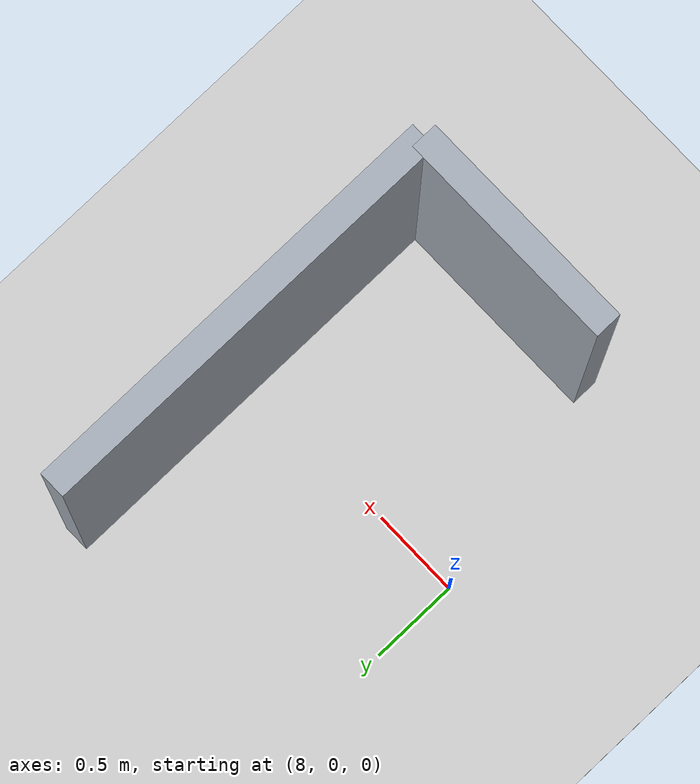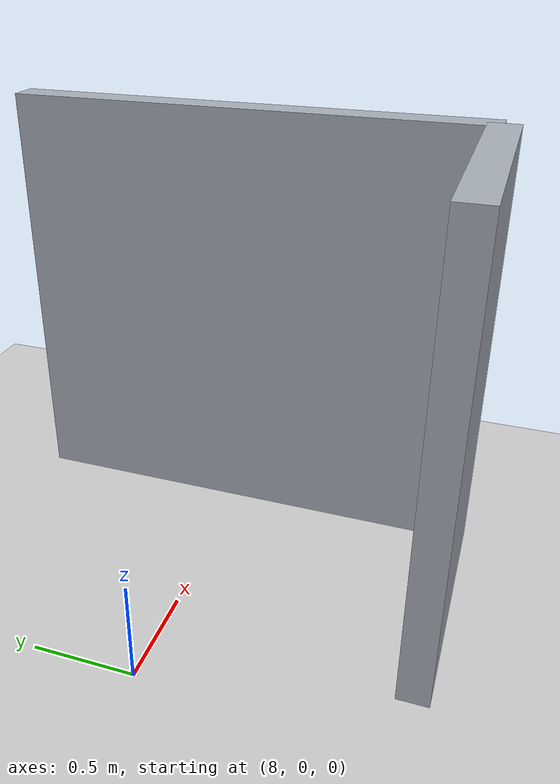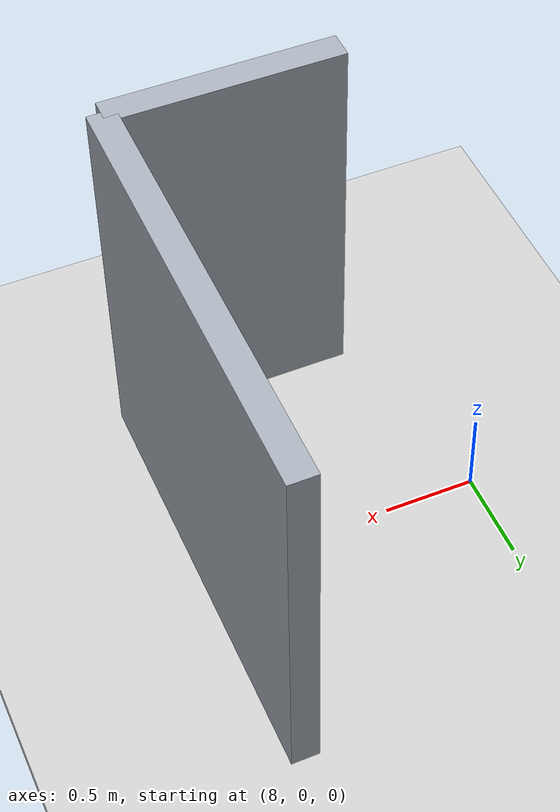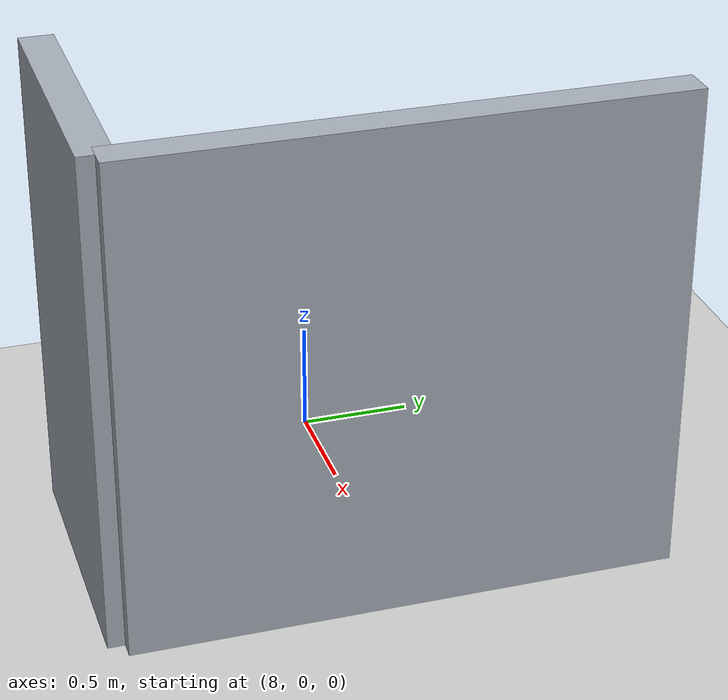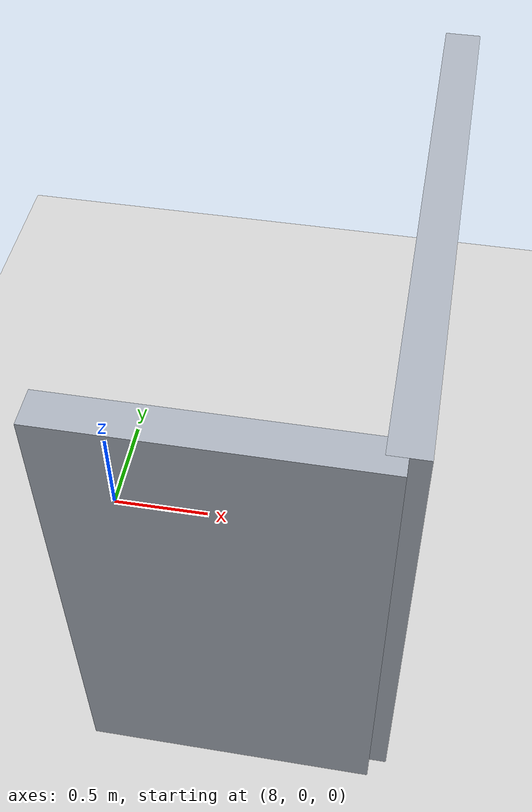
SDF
<sdf version="1.9">
 <world name="default">
  <model name="ground_plane">
   <static>true</static>
   <pose>4.75 0 -0.05 0 0 0</pose>
   <link name="body">
    <collision name="collision"><geometry><box><size>13.5 12 0.1</size></box></geometry></collision>
    <visual name="visual">
     <geometry><box><size>13.5 12 0.1</size></box></geometry>
     <material><ambient>0.8 0.8 0.8 1</ambient><diffuse>0.8 0.8 0.8 1</diffuse></material>
    </visual>
   </link>
  </model>
  <model name="end_wall">
   <static>true</static>
   <pose>9.5 0 1.1 0 0 0</pose>
   <link name="body">
    <collision name="collision"><geometry><box><size>0.15 2.4 2.2</size></box></geometry></collision>
    <visual name="visual">
     <geometry><box><size>0.15 2.4 2.2</size></box></geometry>
     <material><ambient>0.65 0.68 0.72 1</ambient><diffuse>0.65 0.68 0.72 1</diffuse></material>
    </visual>
   </link>
  </model>
  <model name="hall_end_-1">
   <static>true</static>
   <pose>8.875 -1.2 1.1 0 0 0</pose>
   <link name="body">
    <collision name="collision"><geometry><box><size>1.25 0.15 2.2</size></box></geometry></collision>
    <visual name="visual">
     <geometry><box><size>1.25 0.15 2.2</size></box></geometry>
     <material><ambient>0.65 0.68 0.72 1</ambient><diffuse>0.65 0.68 0.72 1</diffuse></material>
    </visual>
   </link>
  </model>
 </world>
</sdf>
